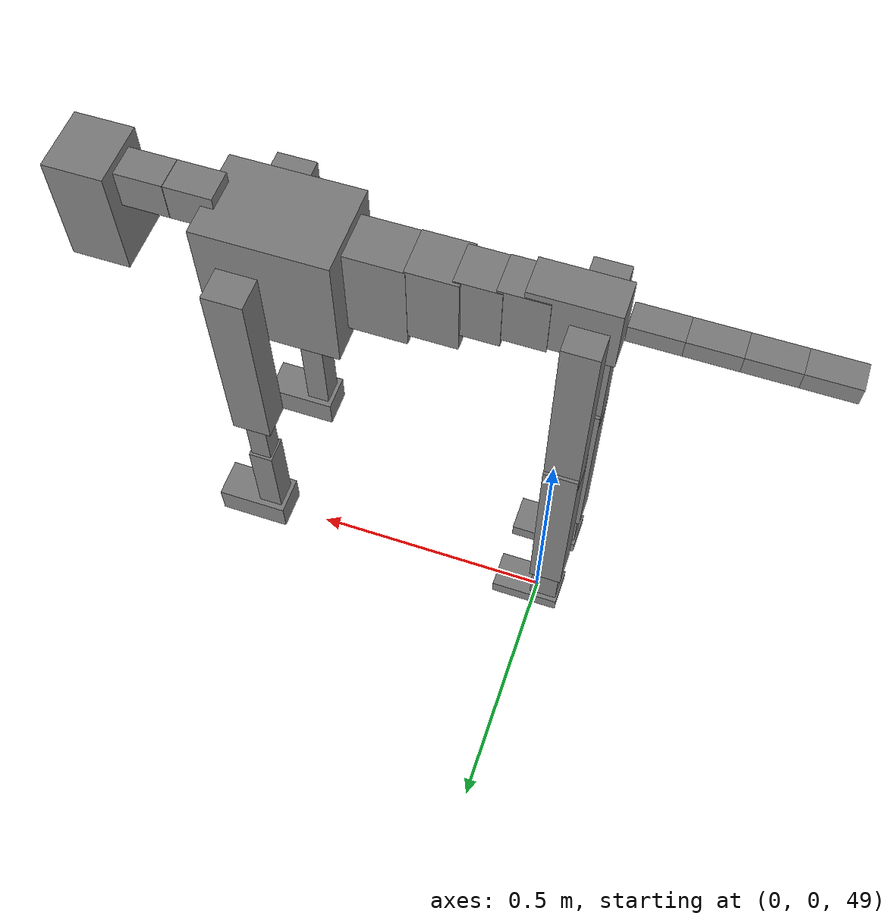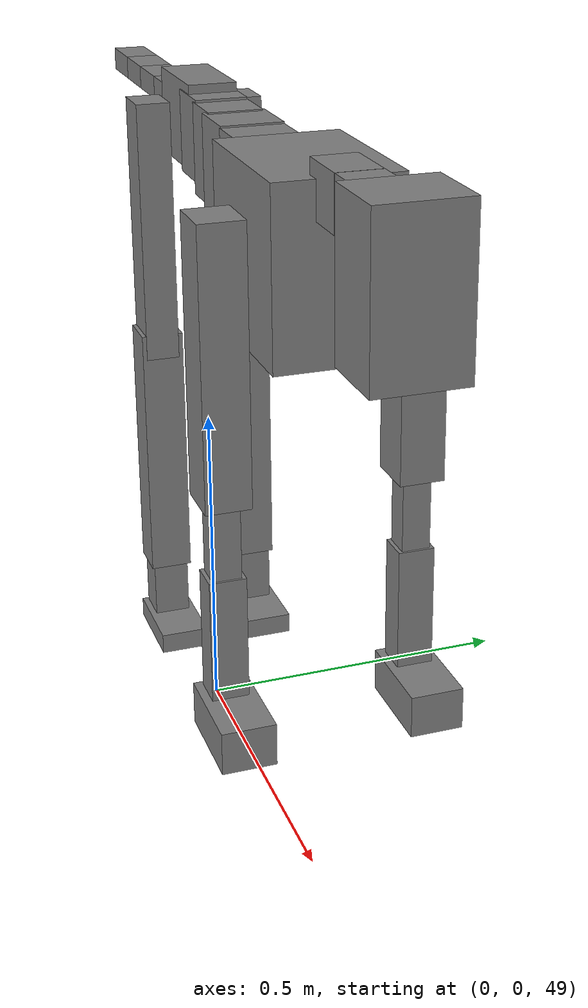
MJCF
<mujoco model="dog">

    <default>
        <joint armature="0.02" stiffness="1" damping="0.2" limited="true"/>
        <geom condim="3" friction="1 0.05 0.05" margin="0.01"/>
        <motor ctrllimited="true" ctrlrange="-1.0 1.0" forcelimited="true" gear="50"/>
    </default>

    <compiler inertiafromgeom="true" angle="radian"/>

    <option timestep="0.016" iterations="50" tolerance="1e-10" solver="Newton" jacobian="dense" cone="pyramidal"/>

    <size nconmax="20000" njmax="60000" nstack="5000000"/>
    <visual>
        <map force="0.1" zfar="30"/>
        <rgba haze="0.15 0.25 0.35 1"/>
        <quality shadowsize="2048"/>
        <global offwidth="800" offheight="800"/>
    </visual>

    <asset>
        <texture type="skybox" builtin="gradient" rgb1="0.3 0.5 0.7" rgb2="0 0 0" width="512" height="512"/>
        <texture name="texplane" type="2d" builtin="checker" rgb1=".2 .3 .4" rgb2=".1 0.15 0.2" width="512" height="512"
                 mark="cross" markrgb=".8 .8 .8"/>
        <texture name="texgeom" type="cube" builtin="flat" mark="cross" width="127" height="1278" rgb1="0.8 0.6 0.4"
                 rgb2="0.8 0.6 0.4" markrgb="1 1 1" random="0.01"/>

        <material name="matplane" reflectance="0.3" texture="texplane" texrepeat="1 1" texuniform="true"/>
        <material name="matgeom" texture="texgeom" texuniform="true" rgba="0.8 0.6 .4 1"/>
    </asset>

    <worldbody>
        <geom name="floor" pos="0 0 0" size="0 0 .25" type="plane" material="matplane" condim="3"/>

        <light directional="false" diffuse=".2 .2 .2" specular="0 0 0" pos="0 0 5" dir="0 0 -1" castshadow="false"/>
        <light mode="targetbodycom" target="torso" directional="false" diffuse=".8 .8 .8" specular="0.3 0.3 0.3"
               pos="0 0 4.0" dir="0 0 -1"/>

        <body name="root" pos="0 0 50">
            <freejoint name="root_1"/>
            <geom type="box" pos="0 0 -0.02" size="0.0774  0.0358  0.063" density="2030"/>

            <body name="spine1" pos="0.054 0 0">
                <joint name="spine1_y" axis="0 1 0" range="0 0.7" limited="true"/>
                <geom type="box" pos="0.02375 0 -0.03" size="0.04375  0.0375  0.05985" density="2030"/>

                <body name="spine2" pos="0.0612 0 0">
                    <joint name="spine2_y" axis="0 1 0" range="-0.15 0.15" limited="true"/>
                    <geom type="box" pos="0.03555  0  -0.04" size="0.04055  0.039  0.06615" density="2030"/>

                    <body name="spine3" pos="0.0730 0 0">
                        <joint name="spine3_y" axis="0 1 0" range="-0.15 0.15" limited="true"/>
                        <geom type="box" pos="0.03555  0  -0.057" size="0.04555  0.0445  0.081" density="2030"/>

                        <body name="spine4" pos="0.0780 0 0">
                            <joint name="spine4_y" axis="0 1 0" range="-0.15 0.15" limited="true"/>
                            <geom type="box" pos="0.05265  0  -0.07" size="0.05265  0.045  0.09135" density="2030"/>

                            <body name="torso" pos="0.1082 0 0">
                                <joint name="torso_y" axis="0 1 0" range="-0.15 0.15" limited="true"/>
                                <geom type="box" pos="0.11925  0  -0.085" size="0.11925  0.085  0.11745"
                                      density="2030"/>

                                <body name="neck1" pos="0.2160  0   0.0180">
                                    <joint name="neck1_y" axis="0 1 0" range="-1.2  -1" limited="true"/>
                                    <geom type="box" pos="0.0423  0  0" size="0.0423  0.03  0.036" density="2325"/>

                                    <body name="neck2" pos="0.0853  0  0">
                                        <joint name="neck2_y" axis="0 1 0" range="0.1  0" limited="true"/>
                                        <geom type="box" pos="0.0423  0  0" size="0.0423  0.03  0.036" density="2325"/>

                                        <body name="head" pos="0.0853  0  0">
                                            <joint name="head_y" axis="0 1 0" range="-0.3  -0.2" limited="true"/>
                                            <geom type="box" pos="0.0531  0  -0.055" size="0.0531  0.06  0.1044"
                                                  density="4030"/>

                                        </body>
                                    </body>
                                </body>

                                <body name="front_shoulder" pos="0.156  0   -0.0480">
                                    <joint name="front_shoulder_y" axis="0 1 0" range="-1 1.5" limited="true"/>
                                    <geom type="box" pos="0 0.13 -0.1594" size="0.0359  0.0307  0.1861" density="1158"/>
                                    <geom type="box" pos="0 -0.13 -0.1594" size="0.0359  0.0307  0.1861"
                                          density="1158"/>

                                    <body name="front_elbow" pos="0  0  -0.3189">
                                        <joint name="front_elbow_y" axis="0 1 0" range="-2 0" limited="true"/>
                                        <geom type="box" pos="0 0.13 -0.0713" size="0.0192  0.0196  0.0713"
                                              density="1081"/>
                                        <geom type="box" pos="0 -0.13 -0.0713" size="0.0192  0.0196  0.0713"
                                              density="1081"/>

                                        <body name="front_wrist" pos="0  0  -0.1427">
                                            <joint name="front_wrist_y" axis="0 1 0" range="-0.2 0" limited="true"/>
                                            <geom type="box" pos="0 0.13 -0.0869" size="0.0226  0.0251  0.1001"
                                                  density="1664"/>
                                            <geom type="box" pos="0 -0.13 -0.0869" size="0.0226  0.0251  0.1001"
                                                  density="1664"/>

                                            <body name="front_finger_end" pos="0  0  -0.1739">
                                                <joint name="front_finger_y" axis="0 1 0" range="-0.4 1"
                                                       limited="true"/>
                                                <geom type="box" pos="0.0367  0.13  -0.0147"
                                                      size="0.0672  0.0367  0.0297" density="1515"/>
                                                <geom type="box" pos="0.0367  -0.13  -0.0147"
                                                      size="0.0672  0.0367  0.0297" density="1515"/>

                                            </body>

                                        </body>
                                    </body>
                                </body>

                            </body>
                        </body>
                    </body>
                </body>
            </body>

            <body name="back_hip" pos="-0.03 0 -0.018">
                <joint name="back_hip_y" axis="0 1 0" range="-1.5 0.3" limited="true"/>
                <geom type="box" pos="0 0.07 -0.1750" size="0.0322  0.0253  0.1978" density="1154"/>
                <geom type="box" pos="0 -0.07 -0.1750" size="0.0322  0.0253  0.1978" density="1154"/>

                <body name="back_knee" pos="0  0  -0.3500">
                    <joint name="back_knee_y" axis="0 1 0" range="0 2.8" limited="true"/>
                    <geom type="box" pos="0 0.07 -0.1832" size="0.0321  0.0317  0.1988" density="1227"/>
                    <geom type="box" pos="0 -0.07 -0.1832" size="0.0321  0.0317  0.1988" density="1227"/>

                    <body name="back_ankle" pos="0  0  -0.3664">
                        <joint name="back_ankle_y" axis="0 1 0" range="-2.2 0" limited="true"/>
                        <geom type="box" pos="0 0.07 -0.0578" size="0.0272  0.0272  0.0691" density="1284"/>
                        <geom type="box" pos="0 -0.07 -0.0578" size="0.0272  0.0272  0.0691" density="1284"/>

                        <body name="back_toe_end" pos="0  0  -0.1156">
                            <joint name="back_toe_y" axis="0 1 0" range="-0.4 1" limited="true"/>
                            <geom type="box" pos="0.0368  0.07  -0.0004" size="0.0674  0.0368  0.0154" density="1515"/>
                            <geom type="box" pos="0.0368  -0.07  -0.0004" size="0.0674  0.0368  0.0154" density="1515"/>

                        </body>
                    </body>
                </body>
            </body>

            <body name="tail1" pos="-0.074 0 -0.006">
                <joint name="tail1_y" axis="0 1 0" range="-0.2 0.2" limited="true"/>
                <geom type="box" pos="-0.0536  0  0" size="0.045  0.025  0.0175" density="1587"/>

                <body name="tail2" pos="-0.09 0 0">
                    <joint name="tail2_y" axis="0 1 0" range="-0.2 0.2" limited="true"/>
                    <geom type="box" pos="-0.0536  0  0" size="0.045  0.025  0.0175" density="1587"/>

                    <body name="tail3" pos="-0.09 0 0">
                        <joint name="tail3_y" axis="0 1 0" range="-0.2 0.2" limited="true"/>
                        <geom type="box" pos="-0.0536  0  0" size="0.045  0.025  0.0175" density="1587"/>

                        <body name="tail4" pos="-0.09 0 0">
                            <joint name="tail4_y" axis="0 1 0" range="-0.2 0.2" limited="true"/>
                            <geom type="box" pos="-0.0536  0  0" size="0.045  0.025  0.0175" density="1587"/>

                        </body>
                    </body>
                </body>
            </body>
        </body>
    </worldbody>

    <actuator>
        <motor joint="spine1_y" forcerange="-150 150     "/>
        <motor joint="spine2_y" forcerange="-150 150     "/>
        <motor joint="spine3_y" forcerange="-150 150     "/>
        <motor joint="spine4_y" forcerange="-150 150     "/>
        <motor joint="torso_y" forcerange="-150 150     "/>
        <motor joint="neck1_y" forcerange="-100 100       "/>
        <motor joint="neck2_y" forcerange="-100 100       "/>
        <motor joint="head_y" forcerange="-150 150       "/>
        <motor joint="front_shoulder_y" forcerange="-161.20 143.41"/>
        <motor joint="front_elbow_y" forcerange="-121.60 120.84"/>
        <motor joint="front_wrist_y" forcerange="-93.33 107.49"/>
        <motor joint="front_finger_y" forcerange="-68.66 86.93"/>
        <motor joint="back_hip_y" forcerange="-336.73 200.32"/>
        <motor joint="back_knee_y" forcerange="-340.87 320.04"/>
        <motor joint="back_angle_y" forcerange="-89.93 245.43"/>
        <motor joint="back_toe_y" forcerange="-135.92 78.34"/>
        <motor joint="tail1_y" forcerange="-50 50     "/>
        <motor joint="tail2_y" forcerange="-50 50     "/>
        <motor joint="tail3_y" forcerange="-50 50     "/>
        <motor joint="tail4_y" forcerange="-50 50     "/>
    </actuator>
</mujoco>
